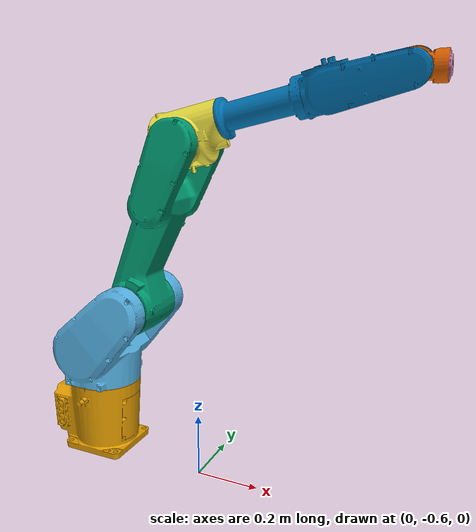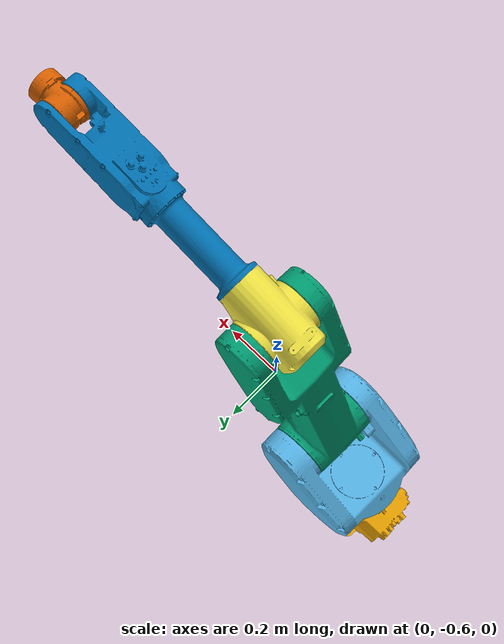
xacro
<?xml version="1.0"?>
<robot xmlns:xacro="http://www.ros.org/wiki/xacro" name="abb_irb1300_7_140">
    <xacro:arg name="initial_positions_file" default="initial_positions.yaml" />

    <!-- Import abb_irb1300_7_140 urdf file -->
    <xacro:include filename="$(find abb_irb1300_support)/urdf/irb1300_7_140.xacro" />

    <!-- Import control_xacro -->
    <xacro:include filename="abb_irb1300_7_140.ros2_control.xacro" />

    <xacro:abb_irb1300_7_140_ros2_control name="FakeSystem" initial_positions_file="$(arg initial_positions_file)"/>

</robot>

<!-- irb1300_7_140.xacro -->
<robot name="abb_irb1300_7_140" xmlns:xacro="http://ros.org/wiki/xacro">
  <xacro:arg name="use_fake_hardware" default="true"/>
  <xacro:property name="use_fake_hardware" value="$(arg use_fake_hardware)"/>
  <xacro:arg name="rws_ip" default="None"/>
  <xacro:property name="rws_ip" value="$(arg rws_ip)"/>
  <xacro:arg name="rws_port" default="80"/>
  <xacro:property name="rws_port" value="$(arg rws_port)"/>
  <xacro:arg name="configure_via_rws" default="true"/>
  <xacro:property name="configure_via_rws" value="$(arg configure_via_rws)"/>
  <!-- Robot description -->
  <xacro:include filename="$(find abb_irb1300_support)/urdf/irb1300_7_140_macro.xacro"/>
  <xacro:abb_irb1300_7_140 prefix=""/>

  <!-- ros2_control -->
  <xacro:include filename="$(find abb_irb1300_support)/urdf/irb1300.ros2_control.xacro" />
  <xacro:abb_ros2_control
    name="ABBMultiInterfaceHardware"
    prefix=""
    use_fake_hardware="${use_fake_hardware}"
    rws_ip="${rws_ip}"
    rws_port="${rws_port}"
    configure_via_rws="${configure_via_rws}"/>
</robot>

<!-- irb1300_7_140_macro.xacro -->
<robot xmlns:xacro="http://ros.org/wiki/xacro">
  <xacro:include filename="$(find abb_resources)/urdf/common_materials.xacro"/>

  <xacro:macro name="abb_irb1300_7_140" params="prefix">
    <!-- link list -->
    <link name="${prefix}base_link">
      <!-- See note 1 in package.xml about the inertial and mass values -->
      <inertial>
        <mass value="13.7742"/>
        <origin xyz="-0.028986 0.000596 0.11273"/>
        <inertia ixx="0.101998" ixy="0.000495482" ixz="0.000311158" iyy="0.13969" iyz="-0.000245375" izz="0.130433"/>
      </inertial>
      <collision name="collision">
        <geometry>
          <mesh filename="package://abb_irb1300_support/meshes/irb1300_7_140/collision/base_link.stl"/>
        </geometry>
      </collision>
      <visual name="visual">
        <geometry>
          <mesh filename="package://abb_irb1300_support/meshes/irb1300_7_140/visual/base_link.stl"/>
        </geometry>
        <xacro:material_abb_dark_gray />
      </visual>
    </link>
    <link name="${prefix}link_1">
      <!-- See note 1 in package.xml about the inertial and mass values -->
      <inertial>
        <mass value="11.8419"/>
        <origin xyz="0.000877 -0.000631 -0.062883"/>
        <inertia ixx="0.11194" ixy="-4.54988e-05" ixz="0.000280961" iyy="0.0915159" iyz="-0.000109905" izz="0.0876456"/>
      </inertial>
      <collision name="collision">
        <geometry>
          <mesh filename="package://abb_irb1300_support/meshes/irb1300_7_140/collision/link_1.stl"/>
        </geometry>
      </collision>
      <visual name="visual">
        <geometry>
          <mesh filename="package://abb_irb1300_support/meshes/irb1300_7_140/visual/link_1.stl"/>
        </geometry>
        <xacro:material_abb_dark_gray />
      </visual>
    </link>
    <link name="${prefix}link_2">
      <!-- See note 1 in package.xml about the inertial and mass values -->
      <inertial>
        <mass value="17.5394"/>
        <origin xyz="-0.000928 -0.000497 0.250051"/>
        <inertia ixx="0.493558" ixy="1.32136e-05" ixz="0.000209024" iyy="0.462939" iyz="-0.00179901" izz="0.0894214"/>
      </inertial>
      <collision name="collision">
        <geometry>
          <mesh filename="package://abb_irb1300_support/meshes/irb1300_7_140/collision/link_2.stl"/>
        </geometry>
      </collision>
      <visual name="visual">
        <geometry>
          <mesh filename="package://abb_irb1300_support/meshes/irb1300_7_140/visual/link_2.stl"/>
        </geometry>
        <xacro:material_abb_dark_gray />
      </visual>
    </link>
    <link name="${prefix}link_3">
      <!-- See note 1 in package.xml about the inertial and mass values -->
      <inertial>
        <mass value="7.46365"/>
        <origin xyz="0.099588 0.001143 0.032333"/>
        <inertia ixx="0.0252424" ixy="0.000142737" ixz="-0.00565542" iyy="0.0906438" iyz="0.000142213" izz="0.0825079"/>
      </inertial>
      <collision name="collision">
        <geometry>
          <mesh filename="package://abb_irb1300_support/meshes/irb1300_7_140/collision/link_3.stl"/>
        </geometry>
      </collision>
      <visual name="visual">
        <geometry>
          <mesh filename="package://abb_irb1300_support/meshes/irb1300_7_140/visual/link_3.stl"/>
        </geometry>
        <xacro:material_abb_dark_gray />
      </visual>
    </link>
    <link name="${prefix}link_4">
      <!-- See note 1 in package.xml about the inertial and mass values -->
      <inertial>
        <mass value="2.74436"/>
        <origin xyz="0.381678 0.001261 0.005168"/>
        <inertia ixx="0.00573099" ixy="-0.000131119" ixz="0.000380232" iyy="0.0118352" iyz="-2.26565e-05" izz="0.0114428"/>
      </inertial>
      <collision name="collision">
        <geometry>
          <mesh filename="package://abb_irb1300_support/meshes/irb1300_7_140/collision/link_4.stl"/>
        </geometry>
      </collision>
      <visual name="visual">
        <geometry>
          <mesh filename="package://abb_irb1300_support/meshes/irb1300_7_140/visual/link_4.stl"/>
        </geometry>
        <xacro:material_abb_dark_gray />
      </visual>
    </link>
    <link name="${prefix}link_5">
      <!-- See note 1 in package.xml about the inertial and mass values -->
      <inertial>
        <mass value="0.62953"/>
        <origin xyz="0.011197 -0.001056 0.000109"/>
        <inertia ixx="0.000502815" ixy="-1.03173e-05" ixz="-8.74347e-08" iyy="0.00108856" iyz="2.07657e-07" izz="0.000918873"/>
      </inertial>
      <collision name="collision">
        <geometry>
          <mesh filename="package://abb_irb1300_support/meshes/irb1300_7_140/collision/link_5.stl"/>
        </geometry>
      </collision>
      <visual name="visual">
        <geometry>
          <mesh filename="package://abb_irb1300_support/meshes/irb1300_7_140/visual/link_5.stl"/>
        </geometry>
        <xacro:material_abb_dark_gray />
      </visual>
    </link>
    <link name="${prefix}link_6">
      <!-- See note 1 in package.xml about the inertial and mass values -->
      <inertial>
        <mass value="0.137"/>
        <origin xyz="-0.00706 -0.00017 -1.32E-06" rpy="0 0 0"/>
        <inertia ixx="0.001" ixy="0" ixz="0" iyy="0.001" iyz="0" izz="0.001"/>
      </inertial>
      <!-- Meshlab calculated values (below) make gazebo crash when rotating this joint. -->
      <collision name="collision">
        <geometry>
          <mesh filename="package://abb_irb1300_support/meshes/irb1300_7_140/collision/link_6.stl"/>
        </geometry>
      </collision>
      <visual name="visual">
        <geometry>
          <mesh filename="package://abb_irb1300_support/meshes/irb1300_7_140/visual/link_6.stl"/>
        </geometry>
        <xacro:material_abb_dark_gray />
      </visual>
    </link>
    <!-- end of link list -->

    <!-- joint list -->
      <!-- See note 2 in package.xml about effort limits and dynamics values -->
      <!-- NOTE: ABB IRB1300-7/140 does not support torque control (effort=0). -->
    <joint type="revolute" name="${prefix}joint_1">
      <origin xyz="-0.43218 -0.48436 0.20975" rpy="0 0 0"/>
      <axis xyz="0 0 1"/>
      <parent link="${prefix}base_link"/>
      <child link="${prefix}link_1"/>
      <limit effort="0" lower="${radians(-180)}" upper="${radians(180)}" velocity="${radians(225)}"/>
      <dynamics damping="5.0" friction="1.0"/>
    </joint>
    <joint type="revolute" name="${prefix}joint_2">
      <origin xyz="0.15 0 0.292" rpy="0 0.33992 0"/>
      <axis xyz="0 1 0"/>
      <parent link="${prefix}link_1"/>
      <child link="${prefix}link_2"/>
      <limit effort="0" lower="${radians(-95)}" upper="${radians(155)}" velocity="${radians(180)}"/>
      <dynamics damping="5.0" friction="1.0"/>
    </joint>
    <joint type="revolute" name="${prefix}joint_3">
      <origin xyz="0 0 0.575" rpy="0 -0.57698 0"/>
      <axis xyz="0 1 0"/>
      <parent link="${prefix}link_2"/>
      <child link="${prefix}link_3"/>
      <limit effort="0" lower="${radians(-210)}" upper="${radians(69)}" velocity="${radians(140)}"/>
      <dynamics damping="5.0" friction="1.0"/>
    </joint>
    <joint type="revolute" name="${prefix}joint_4">
      <origin xyz="0.090805 0 0.04" rpy="0.1453 0 0"/>
      <axis xyz="1 0 0"/>
      <parent link="${prefix}link_3"/>
      <child link="${prefix}link_4"/>
      <limit effort="0" lower="${radians(-230)}" upper="${radians(230)}" velocity="${radians(500)}"/>
      <dynamics damping="5.0" friction="1.0"/>
    </joint>
    <joint type="revolute" name="${prefix}joint_5">
      <origin xyz="0.5842 0 0" rpy="0 0.20514 0"/>
      <axis xyz="0 1 0"/>
      <parent link="${prefix}link_4"/>
      <child link="${prefix}link_5"/>
      <limit effort="0" lower="${radians(-130)}" upper="${radians(130)}" velocity="${radians(415)}"/>
      <dynamics damping="2.0" friction="1.0"/>
    </joint>
    <joint type="revolute" name="${prefix}joint_6">
      <origin xyz="0.077932 0 0" rpy="1.429 0 0"/>
      <axis xyz="1 0 0"/>
      <parent link="${prefix}link_5"/>
      <child link="${prefix}link_6"/>
      <limit effort="0" lower="${radians(-400)}" upper="${radians(400)}" velocity="${radians(720)}"/>
      <dynamics damping="1.0" friction="1.0"/>
    </joint>
    <!-- end of joint list -->

    <!-- ROS-Industrial 'base' frame- base_link to ABB World Coordinates transform -->
    <link name="${prefix}base" />
    <joint name="${prefix}base_link-base" type="fixed">
      <origin xyz="0 0 0" rpy="0 0 0"/>
      <parent link="${prefix}base_link"/>
      <child link="${prefix}base"/>
    </joint>

    <!-- ROS-Industrial 'flange' frame- attachment point for EEF models -->
    <link name="${prefix}flange"/>
    <joint type="fixed" name="${prefix}joint_6-flange">
      <origin xyz="0 0 0" rpy="0 0 0"/>
      <parent link="${prefix}link_6"/>
      <child link="${prefix}flange"/>
    </joint>

    <!-- ROS-Industrial 'tool0' frame- all-zeros tool frame -->
    <link name="${prefix}tool0" />
    <joint name="${prefix}link_6-tool0" type="fixed">
      <origin xyz="0 0 0" rpy="0 ${radians(90)} 0" />
      <parent link="${prefix}flange" />
      <child link="${prefix}tool0" />
    </joint>
  </xacro:macro>
</robot>
